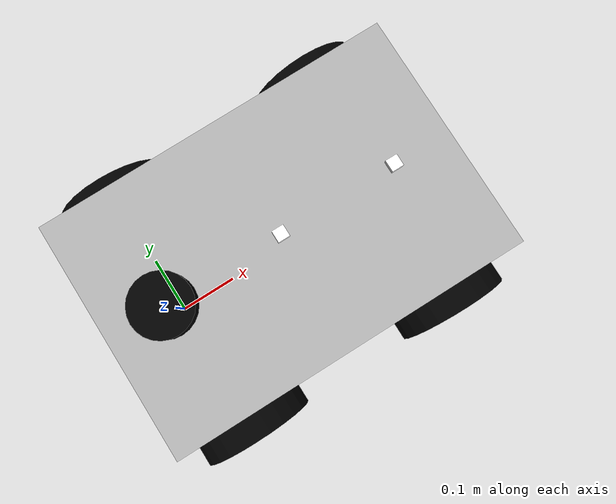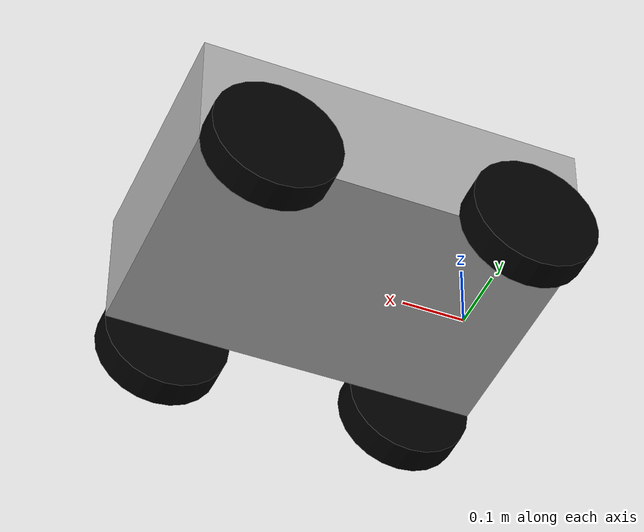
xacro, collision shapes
<?xml version="1.0"?>
<robot xmlns:xacro="http://www.ros.org/wiki/xacro"  name="robot">

    <xacro:arg name="use_ros2_control" default="true"/>
    <xacro:arg name="sim_mode" default="true"/>

    <xacro:include filename="robot_core.xacro" />
    <xacro:include filename="gazebo_control.xacro" />
    <xacro:include filename="lidar.xacro" />
    <xacro:include filename="imu.xacro"/>
    <xacro:include filename="gps.xacro"/>
    <xacro:include filename="depth_camera.xacro" />

</robot>

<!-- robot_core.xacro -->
<robot xmlns:xacro="http://www.ros.org/wiki/xacro">

    <xacro:include filename="inertial_macros.xacro"/>

    <material name="grey">
        <color rgba="0.7 0.7 0.7 1.0"/>
    </material>

    <material name="black">
        <color rgba="0 0 0 1.0"/>
    </material>

    <material name="green">
        <color rgba="0 0.6 0 1.0"/>
    </material>

    <material name="blue">
        <color rgba="0 0.0 0.7 1.0"/>
    </material>

    <material name="red">
        <color rgba="0.6 0.0 0 1.0"/>
    </material>

    <material name="white">
        <color rgba="1 1 1 1.0"/>
    </material>

    <!-- BASE LINK -->

    <link name="base_link">
    </link>
    <!-- BASE FOOTPRINT-->
    <joint name="base_footprint_joint" type="fixed">
        <origin xyz="0 0 0" rpy="0 0 0"/>
        <parent link="base_link"/>
        <child link="base_footprint"/>
    </joint>
    <link name="base_footprint">
    </link>
    <!-- CHASSIS LINK -->
    <link name="chassis_link">
        <visual>
            <geometry>
                <box size="0.6 0.4 0.2"/>
            </geometry>
            <origin xyz="0.3 0.0 0.1" rpy="0.0 0.0 0.0"/>
            <material name="grey"/>
        </visual>
        <collision>
            <geometry>
                <box size="0.6 0.4 0.2"/>
            </geometry>
            <origin xyz="0.3 0.0 0.1" rpy="0.0 0.0 0.0"/>
        </collision>
        <xacro:inertial_box mass="0.75" x="0.6" y="0.4" z="0.2">
            <origin xyz="0.3 0.0 0.1" rpy="0.0 0.0 0.0"/>
        </xacro:inertial_box>
    </link>
    <gazebo reference="chassis_link">
        <mu1>0.2</mu1>
        <mu2>0.2</mu2>
        <material>Gazebo/Grey</material>
    </gazebo>
    <joint name="chassis_joint" type="fixed">
        <parent link="base_link"/>
        <child link="chassis_link"/>
        <origin xyz="-0.1 0.0 0.0" rpy="0.0 0.0 0.0"/>
    </joint>
    <!-- LEFT WHEEL(BACK)-->
    <link name="left_back_wheel">
        <visual>
            <origin xyz="0.0 0.0 0.025" rpy="-1.57 0.0 0.0"/>
            <geometry>
                        <mesh
          filename="file://$(find halo)/meshes/RWL.STL" />
            </geometry>
            <material name="black"/>
        </visual>
        <collision>
            <origin xyz="0.0 0.0 0.0" rpy="0.0 0.0 0.0"/>
            <geometry>
                <cylinder radius="0.1" length="0.05"/>
            </geometry>
        </collision>
        <xacro:inertial_cylinder mass="0.2" radius="0.1" length="0.05">
            <origin xyz="0.0 0.0 0.0" rpy="0.0 0.0 0.0"/>
        </xacro:inertial_cylinder>
    </link>
    <gazebo reference="left_back_wheel">
        <mu1>0.2</mu1>
        <mu2>0.2</mu2>
        <kp>1e15</kp>
        <kd>1e14</kd>
        <material>Gazebo/Black</material>
    </gazebo>
    <joint name="left_back_wheel_joint" type="continuous">
        <origin xyz="0.0 0.225 0.0" rpy="-1.5707963267948966 0.0 0.0"/>
        <parent link="base_link"/>
        <child link="left_back_wheel"/>
        <axis xyz="0.0 0.0 1.0"/>
    </joint>

    <!-- RIGHT WHEEL(BACK)-->
    <link name="right_back_wheel">
        <visual>
            <origin xyz="0.0 0.0 -0.025" rpy="1.57 0.0 0.0"/>
            <geometry>
                    <mesh
          filename="file://$(find halo)/meshes/RWR.STL" />
            </geometry>
            <material name="black"/>
        </visual>
        <collision>
            <origin xyz="0.0 0.0 0.0" rpy="0.0 0.0 0.0"/>
            <geometry>
                <cylinder radius="0.1" length="0.05"/>
            </geometry>
        </collision>
        <xacro:inertial_cylinder mass="0.2" radius="0.1" length="0.05">
            <origin xyz="0.0 0.0 0.0" rpy="0.0 0.0 0.0"/>
        </xacro:inertial_cylinder>
    </link>
    <gazebo reference="right_back_wheel">
        <mu1>0.2</mu1>
        <mu2>0.2</mu2>
        <kp>1e15</kp>
        <kd>1e14</kd>
        <material>Gazebo/Black</material>
    </gazebo>
    <joint name="right_back_wheel_joint" type="continuous">
        <origin xyz="0.0 -0.225 0.0" rpy="1.5707963267948966 0.0 0.0"/>
        <parent link="base_link"/>
        <child link="right_back_wheel"/>
        <axis xyz="0.0 0.0 -1.0"/>
    </joint>
    <!-- LEFT WHEEL(FRONT)-->
    <link name="left_front_wheel">
        <visual>
            <origin xyz="0.0 0.0 0.025" rpy="-1.57 0.0 0.0"/>
            <geometry>
                        <mesh
           filename="file://$(find halo)/meshes/FWL.STL" />
            </geometry>
            <material name="black"/>
        </visual>
        <collision>
            <origin xyz="0.0 0.0 0.0" rpy="0.0 0.0 0.0"/>
            <geometry>
                <cylinder radius="0.1" length="0.05"/>
            </geometry>
        </collision>
        <xacro:inertial_cylinder mass="0.2" radius="0.1" length="0.05">
            <origin xyz="0.0 0.0 0.0" rpy="0.0 0.0 0.0"/>
        </xacro:inertial_cylinder>
    </link>
    <gazebo reference="left_front_wheel">
        <mu1>0.2</mu1>
        <mu2>0.2</mu2>
        <kp>1e15</kp>
        <kd>1e14</kd>
        <material>Gazebo/Black</material>
    </gazebo>
    <joint name="left_front_wheel_joint" type="continuous">
        <origin xyz="0.4 0.225 0.0" rpy="-1.5707963267948966 0.0 0.0"/>
        <parent link="base_link"/>
        <child link="left_front_wheel"/>
        <axis xyz="0.0 0.0 1.0"/>
    </joint>

    <!-- RIGHT WHEEL(FRONT)-->
    <link name="right_front_wheel">
        <visual>
            <origin xyz="0.0 0.0 -0.025" rpy="1.57 0.0 0.0"/>
            <geometry>
                        <mesh
          filename="file://$(find halo)/meshes/FWR.STL" />
            </geometry>
            <material name="black"/>
        </visual>
        <collision>
            <origin xyz="0.0 0.0 0.0" rpy="0.0 0.0 0.0"/>
            <geometry>
                <cylinder radius="0.1" length="0.05"/>
            </geometry>
        </collision>
        <xacro:inertial_cylinder mass="0.2" radius="0.1" length="0.05">
            <origin xyz="0.0 0.0 0.0" rpy="0.0 0.0 0.0"/>
        </xacro:inertial_cylinder>
    </link>
    <gazebo reference="right_front_wheel">
        <mu1>0.2</mu1>
        <mu2>0.2</mu2>
        <kp>1e15</kp>
        <kd>1e14</kd>
        <material>Gazebo/Black</material>
    </gazebo>
    <joint name="right_front_wheel_joint" type="continuous">
        <origin xyz="0.4 -0.225 0.0" rpy="1.5707963267948966 0.0 0.0"/>
        <parent link="base_link"/>
        <child link="right_front_wheel"/>
        <axis xyz="0.0 0.0 -1.0"/>
    </joint>
</robot>

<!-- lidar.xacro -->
<robot xmlns:xacro="http://www.ros.org/wiki/xacro" >

    <joint name="laser_joint" type="fixed">
        <parent link="chassis_link"/>
        <child link="laser_frame"/>
        <origin xyz="0.1 0 0.220" rpy="0 0 0"/>
    </joint>

    <link name="laser_frame">
        <visual>
            <geometry>
                <cylinder radius="0.05" length="0.04"/>
            </geometry>
            <material name="black"/>
        </visual>
        <collision>
            <geometry>
                <cylinder radius="0.05" length="0.04"/>
            </geometry>
        </collision>
        <xacro:inertial_cylinder mass="0.1" length="0.04" radius="0.05">
            <origin xyz="0 0 0" rpy="0 0 0"/>
        </xacro:inertial_cylinder>
    </link>

    <gazebo reference="laser_frame">
        <material>Gazebo/Black</material>

        <sensor name="laser" type="ray">
            <pose> 0 0 0 0 0 0 </pose>
            <visualize>false</visualize>
            <update_rate>10.0</update_rate>
            <ray>
                <scan>
                    <horizontal>
                        <samples>720</samples>
                        <min_angle>-3.14</min_angle>
                        <max_angle>3.14</max_angle>
                    </horizontal>
                </scan>
                <range>
                    <min>0.2</min>
                    <max>8</max>
                </range>
            </ray>
            <plugin name="laser_controller" filename="libgazebo_ros_ray_sensor.so">
                <ros>
                    <remapping>~/out:=scan</remapping>
                </ros>
                <output_type>sensor_msgs/LaserScan</output_type>
                <frame_name>laser_frame</frame_name>
            </plugin>
        </sensor>
    </gazebo>

</robot>

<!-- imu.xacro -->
<robot xmlns:xacro="http://www.ros.org/wiki/xacro">

    <joint name="imu_joint" type="fixed">
        <parent link="chassis_link"/>
        <child link="imu_link"/>
        <origin xyz="0.3 0 0.205" rpy="0 0 0"/>
    </joint>

    <link name="imu_link">
        <visual>
            <origin xyz="0.0 0.0 0.0" rpy="0.0 0.0 0.0"/>
            <geometry>
                <box size="0.020 0.02 0.010"/>
            </geometry>
            <material name="white"/>
        </visual>
        <collision>
            <geometry>
                <box size="0.020 0.02 0.010"/>
            </geometry>
        </collision>
        <xacro:inertial_box mass="0.1" x="0.02" y="0.02" z="0.01">
            <origin xyz="0 0 0" rpy="0 0 0"/>
        </xacro:inertial_box>
    </link>
  <gazebo reference="imu_link">
    <material>Gazebo/White</material>
    <gravity>true</gravity>
    <sensor name="imu_sensor" type="imu">
      <always_on>true</always_on>
      <update_rate>10</update_rate>
      <visualize>true</visualize>
      <topic>__default_topic__</topic>
      <plugin filename="libgazebo_ros_imu_sensor.so" name="imu_plugin">
        <ros>
          <remapping>~/out:=/imu</remapping>
        </ros>
        <topic>imu</topic>
        <bodyName>imu_link</bodyName>
        <update_rate>30.0</update_rate>
        <updateRateHZ>10.0</updateRateHZ>
        <gaussianNoise>0.0</gaussianNoise>
        <xyzOffset>0 0 0</xyzOffset>
        <rpyOffset>0 0 0</rpyOffset>
        <frameName>imu_link</frameName>
        <initial_orientation_as_reference>false</initial_orientation_as_reference>
      </plugin>
      <pose>0 0 0 0 0 0</pose>
    </sensor>
  </gazebo>

</robot>

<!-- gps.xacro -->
<robot xmlns:xacro="http://www.ros.org/wiki/xacro">

    <joint name="gps_joint" type="fixed">
        <parent link="chassis_link"/>
        <child link="gps_link"/>
        <origin xyz="0.5 0 0.205" rpy="0 0 0"/>
    </joint>

    <link name="gps_link">
        <visual>
            <origin xyz="0.0 0.0 0.0" rpy="0.0 0.0 0.0"/>
            <geometry>
                <box size="0.040 0.04 0.010"/>
            </geometry>
            <material name="white"/>
        </visual>
        <collision>
            <geometry>
                <box size="0.020 0.02 0.010"/>
            </geometry>
        </collision>
        <xacro:inertial_box mass="0.1" x="0.02" y="0.02" z="0.01">
            <origin xyz="0 0 0" rpy="0 0 0"/>
        </xacro:inertial_box>
    </link>
  <gazebo reference="gps_link">
    <material>Gazebo/White</material>
    <gravity>true</gravity>
    <sensor name="gps" type="gps">
        <!-- ensure the sensor is active (required) -->
        <always_on>true</always_on>
        <update_rate>30.0</update_rate>
        <plugin name="gps_plugin" filename="libgazebo_ros_gps_sensor.so">
        <ros>
            <!-- publish to /gps/data -->
            <namespace>/gps</namespace>
            <remapping>~/out:=/gps</remapping>
        </ros>
        </plugin>
    </sensor>
  </gazebo>
</robot>

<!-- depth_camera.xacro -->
<robot xmlns:xacro="http://www.ros.org/wiki/xacro" >

    <joint name="camera_joint" type="fixed">
        <parent link="chassis_link"/>
        <child link="camera_link"/>
        <origin xyz="0.6075 0 0.195" rpy="0 0.10 0"/>
    </joint>

    <link name="camera_link">
        <visual>
            <geometry>
                <box size="0.010 0.1 0.020"/>
            </geometry>
            <material name="black"/>
        </visual>
    </link>

    <joint name="camera_optical_joint" type="fixed">
        <parent link="camera_link"/>
        <child link="camera_link_optical"/>
        <origin xyz="0 0 0" rpy="${-pi/2} 0 ${-pi/2}"/>
    </joint>

    <link name="camera_link_optical"></link>

    <gazebo reference="camera_link">
        <material>Gazebo/Black</material>

        <sensor name="camera" type="depth">
            <pose> 0 0 0 0 0 0 </pose>
            <visualize>true</visualize>
            <update_rate>30</update_rate>
            <camera>
                <horizontal_fov>1.089</horizontal_fov>
                <image>
                    <format>B8G8R8</format>
                    <width>640</width>
                    <height>480</height>
                </image>
                <clip>
                    <near>0.05</near>
                    <far>8.0</far>
                </clip>
            </camera>
            <plugin name="camera_controller" filename="libgazebo_ros_camera.so">
                <frame_name>camera_link_optical</frame_name>
                <min_depth>0.1</min_depth>
                <max_depth>100.0</max_depth>
            </plugin>
        </sensor>
    </gazebo>

</robot>
